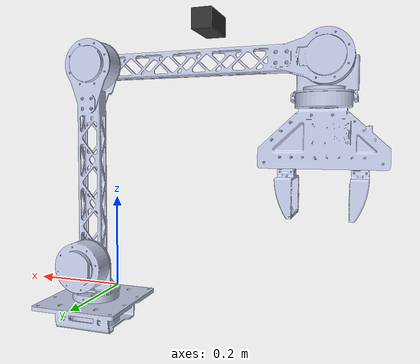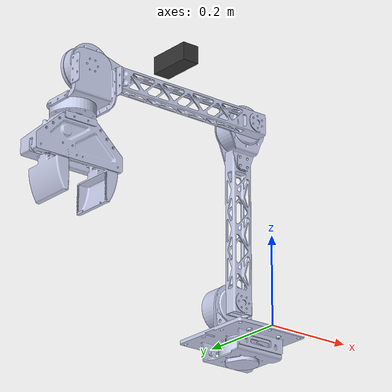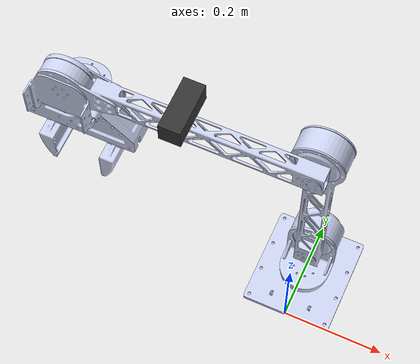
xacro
<?xml version="1.0" encoding="utf-8"?>
<robot xmlns:xacro="http://www.ros.org/wiki/xacro" name="exodus_arm">

  <xacro:arg name="use_fake_hardware" default="false"/>
  <xacro:arg name="can_interface" default="slcan0"/>
  <xacro:arg name="use_gripper" default="false"/>

  <xacro:include filename="$(find arm_description)/urdf/AssemblyURDF_27.04.26.urdf"/>
  <xacro:include filename="$(find arm_description)/urdf/arm.ros2_control.xacro"/>

  <xacro:arm_ros2_control
    name="ExodusArmSystem"
    use_fake_hardware="$(arg use_fake_hardware)"
    can_interface="$(arg can_interface)"
    use_gripper="$(arg use_gripper)"/>

  <!-- Camera Attached to Link_3 -->
  <link name="camera_link">
    <visual>
      <geometry>
        <box size="0.04 0.1 0.04"/>
      </geometry>
      <material name="camera_material">
        <color rgba="0.2 0.2 0.2 1.0"/>
      </material>
    </visual>
    <collision>
      <geometry>
        <box size="0.04 0.1 0.04"/>
      </geometry>
    </collision>
    <inertial>
      <mass value="0.1"/>
      <origin xyz="0 0 0"/>
      <inertia ixx="0.0001" ixy="0" ixz="0" iyy="0.0001" iyz="0" izz="0.0001"/>
    </inertial>
  </link>

  <joint name="camera_joint" type="fixed">
    <parent link="Link_3"/>
    <child link="camera_link"/>
    <!-- Position the camera in the middle of Link_3 (which is ~0.45m long along -X) and slightly above it -->
    <origin xyz="-0.226 0.0 0.08" rpy="0 0 0"/>
  </joint>

</robot>

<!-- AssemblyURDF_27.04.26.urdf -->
<robot
  name="AssemblyURDF_27.04.26">
  <link
    name="base_link">
    <inertial>
      <origin
        xyz="-6.6061E-10 0.1 -0.011297"
        rpy="0 0 0" />
      <mass
        value="0.27577" />
      <inertia
        ixx="0.00070986"
        ixy="4.5512E-13"
        ixz="-7.6717E-14"
        iyy="0.00076213"
        iyz="1.0278E-13"
        izz="0.0014484" />
    </inertial>
    <visual>
      <origin
        xyz="0 0 0"
        rpy="0 0 0" />
      <geometry>
        <mesh
          filename="package://arm_description/meshes/base_link.STL" />
      </geometry>
      <material
        name="">
        <color
          rgba="0.79216 0.81961 0.93333 1" />
      </material>
    </visual>
    <collision>
      <origin
        xyz="0 0 0"
        rpy="0 0 0" />
      <geometry>
        <mesh
          filename="package://arm_description/meshes/base_link.STL" />
      </geometry>
    </collision>
  </link>
  <link
    name="Link_1">
    <inertial>
      <origin
        xyz="6.0358E-05 0.0011086 -0.03127"
        rpy="0 0 0" />
      <mass
        value="0.42031" />
      <inertia
        ixx="0.0002909"
        ixy="3.1402E-07"
        ixz="4.1082E-07"
        iyy="0.00030758"
        iyz="-1.9225E-05"
        izz="0.00045826" />
    </inertial>
    <visual>
      <origin
        xyz="0 0 0"
        rpy="0 0 0" />
      <geometry>
        <mesh
          filename="package://arm_description/meshes/Link_1.STL" />
      </geometry>
      <material
        name="">
        <color
          rgba="0.79216 0.81961 0.93333 1" />
      </material>
    </visual>
    <collision>
      <origin
        xyz="0 0 0"
        rpy="0 0 0" />
      <geometry>
        <mesh
          filename="package://arm_description/meshes/Link_1.STL" />
      </geometry>
    </collision>
  </link>
  <joint
    name="Joint_1"
    type="revolute">
    <origin
      xyz="0 0.1 0.015"
      rpy="0 0 0" />
    <parent
      link="base_link" />
    <child
      link="Link_1" />
    <axis
      xyz="0 0 -1" />
    <limit
      lower="-3.14"
      upper="3.14"
      effort="22"
      velocity="65" />
    <dynamics
      damping="0.1"
      friction="0.51" />
  </joint>
  <link
    name="Link_2">
    <inertial>
      <origin
        xyz="4.7804E-05 0.046882 0.06574"
        rpy="0 0 0" />
      <mass
        value="0.59595" />
      <inertia
        ixx="0.0018516"
        ixy="-7.2642E-07"
        ixz="1.6241E-07"
        iyy="0.0020233"
        iyz="2.7281E-06"
        izz="0.00040429" />
    </inertial>
    <visual>
      <origin
        xyz="0 0 0"
        rpy="0 0 0" />
      <geometry>
        <mesh
          filename="package://arm_description/meshes/Link_2.STL" />
      </geometry>
      <material
        name="">
        <color
          rgba="0.79216 0.81961 0.93333 1" />
      </material>
    </visual>
    <collision>
      <origin
        xyz="0 0 0"
        rpy="0 0 0" />
      <geometry>
        <mesh
          filename="package://arm_description/meshes/Link_2.STL" />
      </geometry>
    </collision>
  </link>
  <joint
    name="Joint_2"
    type="revolute">
    <origin
      xyz="0 -0.008 0.062"
      rpy="0 0 0" />
    <parent
      link="Link_1" />
    <child
      link="Link_2" />
    <axis
      xyz="0 -1 0" />
    <limit
      lower="-3.14"
      upper="3.14"
      effort="120"
      velocity="5.03" />
    <dynamics
      damping="0.1"
      friction="4.7" />
  </joint>
  <link
    name="Link_3">
    <inertial>
      <origin
        xyz="-0.0999281037298112 0.0445425598769282 -4.59006714506049E-05"
        rpy="0 0 0" />
      <mass
        value="0.644031551845069" />
      <inertia
        ixx="0.000442461786452374"
        ixy="-2.94655466717913E-07"
        ixz="-2.96646662363513E-07"
        iyy="0.00272963298820677"
        iyz="7.40340638492832E-07"
        izz="0.00252173564832153" />
    </inertial>
    <visual>
      <origin
        xyz="0 0 0"
        rpy="0 0 0" />
      <geometry>
        <mesh
          filename="package://arm_description/meshes/Link_3.STL" />
      </geometry>
      <material
        name="">
        <color
          rgba="0.792156862745098 0.819607843137255 0.933333333333333 1" />
      </material>
    </visual>
    <collision>
      <origin
        xyz="0 0 0"
        rpy="0 0 0" />
      <geometry>
        <mesh
          filename="package://arm_description/meshes/Link_3.STL" />
      </geometry>
    </collision>
  </link>
  <joint
    name="Joint_3"
    type="revolute">
    <origin
      xyz="-0.00020682 -0.0507 0.39997"
      rpy="0 0 0" />
    <parent
      link="Link_2" />
    <child
      link="Link_3" />
    <axis
      xyz="0 1 0" />
    <limit
      lower="-3.14"
      upper="3.14"
      effort="120"
      velocity="5.03" />
    <dynamics
      damping="0.1"
      friction="4.7" />
  </joint>
  <link
    name="Link_4">
    <inertial>
      <origin
        xyz="6.3132E-05 0.017799 -0.010224"
        rpy="0 0 0" />
      <mass
        value="0.31013" />
      <inertia
        ixx="0.0002947"
        ixy="-3.1704E-07"
        ixz="-4.2418E-07"
        iyy="0.00041868"
        iyz="4.1535E-05"
        izz="0.00032039" />
    </inertial>
    <visual>
      <origin
        xyz="0 0 0"
        rpy="0 0 0" />
      <geometry>
        <mesh
          filename="package://arm_description/meshes/Link_4.STL" />
      </geometry>
      <material
        name="">
        <color
          rgba="0.79216 0.81961 0.93333 1" />
      </material>
    </visual>
    <collision>
      <origin
        xyz="0 0 0"
        rpy="0 0 0" />
      <geometry>
        <mesh
          filename="package://arm_description/meshes/Link_4.STL" />
      </geometry>
    </collision>
  </link>
  <joint
    name="Joint_4"
    type="revolute">
    <origin
      xyz="-0.45276 -0.003 0"
      rpy="0 0 0" />
    <parent
      link="Link_3" />
    <child
      link="Link_4" />
    <axis
      xyz="0 -1 0" />
    <limit
      lower="-3.14"
      upper="3.14"
      effort="22"
      velocity="65" />
    <dynamics
      damping="0.1"
      friction="0.51" />
  </joint>
  <link
    name="Link_5">
    <inertial>
      <origin
        xyz="-0.0031013 0.0048044 -0.062629"
        rpy="0 0 0" />
      <mass
        value="0.81029" />
      <inertia
        ixx="0.00049983"
        ixy="-1.1549E-06"
        ixz="1.7752E-06"
        iyy="0.002205"
        iyz="-7.8116E-06"
        izz="0.0020431" />
    </inertial>
    <visual>
      <origin
        xyz="0 0 0"
        rpy="0 0 0" />
      <geometry>
        <mesh
          filename="package://arm_description/meshes/Link_5.STL" />
      </geometry>
      <material
        name="">
        <color
          rgba="0.79216 0.81961 0.93333 1" />
      </material>
    </visual>
    <collision>
      <origin
        xyz="0 0 0"
        rpy="0 0 0" />
      <geometry>
        <mesh
          filename="package://arm_description/meshes/Link_5.STL" />
      </geometry>
    </collision>
  </link>
  <joint
    name="Joint_5"
    type="revolute">
    <origin
      xyz="0 0.061 -0.0685"
      rpy="0 0 0" />
    <parent
      link="Link_4" />
    <child
      link="Link_5" />
    <axis
      xyz="0 0 1" />
    <limit
      lower="-3.14"
      upper="3.14"
      effort="22"
      velocity="65" />
    <dynamics
      damping="0.1"
      friction="0.51" />
  </joint>
  <link
    name="Finger_Left">
    <inertial>
      <origin
        xyz="-0.014436 -0.00087834 0.013756"
        rpy="0 0 0" />
      <mass
        value="0.087458" />
      <inertia
        ixx="9.5046E-05"
        ixy="-5.8637E-10"
        ixz="2.0824E-06"
        iyy="4.1825E-05"
        iyz="-2.1847E-07"
        izz="6.3904E-05" />
    </inertial>
    <visual>
      <origin
        xyz="0 0 0"
        rpy="0 0 0" />
      <geometry>
        <mesh
          filename="package://arm_description/meshes/Finger_Left.STL" />
      </geometry>
      <material
        name="">
        <color
          rgba="0.79216 0.81961 0.93333 1" />
      </material>
    </visual>
    <collision>
      <origin
        xyz="0 0 0"
        rpy="0 0 0" />
      <geometry>
        <mesh
          filename="package://arm_description/meshes/Finger_Left.STL" />
      </geometry>
    </collision>
  </link>
  <joint
    name="Finger_Left_Joint"
    type="prismatic">
    <origin
      xyz="0.078 -0.00544 -0.14458"
      rpy="3.1416 0 0" />
    <parent
      link="Link_5" />
    <child
      link="Finger_Left" />
    <axis
      xyz="-0.99999 -0.0032051 0" />
    <limit
      lower="0.0"
      upper="0.04"
      effort="7.3"
      velocity="5.55" />
    <dynamics
      damping="0.11"
      friction="0.01" />
  </joint>
  <link
    name="Finger_Right">
    <inertial>
      <origin
        xyz="-0.014511 0.00096247 0.017816"
        rpy="0 0 0" />
      <mass
        value="0.081445" />
      <inertia
        ixx="9.505E-05"
        ixy="2.1382E-09"
        ixz="2.2214E-06"
        iyy="4.0657E-05"
        iyz="4.4265E-07"
        izz="6.4244E-05" />
    </inertial>
    <visual>
      <origin
        xyz="0 0 0"
        rpy="0 0 0" />
      <geometry>
        <mesh
          filename="package://arm_description/meshes/Finger_Right.STL" />
      </geometry>
      <material
        name="">
        <color
          rgba="0.79216 0.81961 0.93333 1" />
      </material>
    </visual>
    <collision>
      <origin
        xyz="0 0 0"
        rpy="0 0 0" />
      <geometry>
        <mesh
          filename="package://arm_description/meshes/Finger_Right.STL" />
      </geometry>
    </collision>
  </link>
  <joint
    name="Finger_Right_Joint"
    type="prismatic">
    <origin
      xyz="-0.078 -0.00494 -0.14458"
      rpy="3.1416 0 3.1416" />
    <parent
      link="Link_5" />
    <child
      link="Finger_Right" />
    <axis
      xyz="-0.99999 -0.0032051 0" />
    <limit
      lower="0.0"
      upper="0.04"
      effort="7.3"
      velocity="5.55" />
    <dynamics
      damping="0.11"
      friction="0.01" />
    <mimic
      joint="Finger_Left_Joint"
      multiplier="1"
      offset="0" />
  </joint>
</robot>
